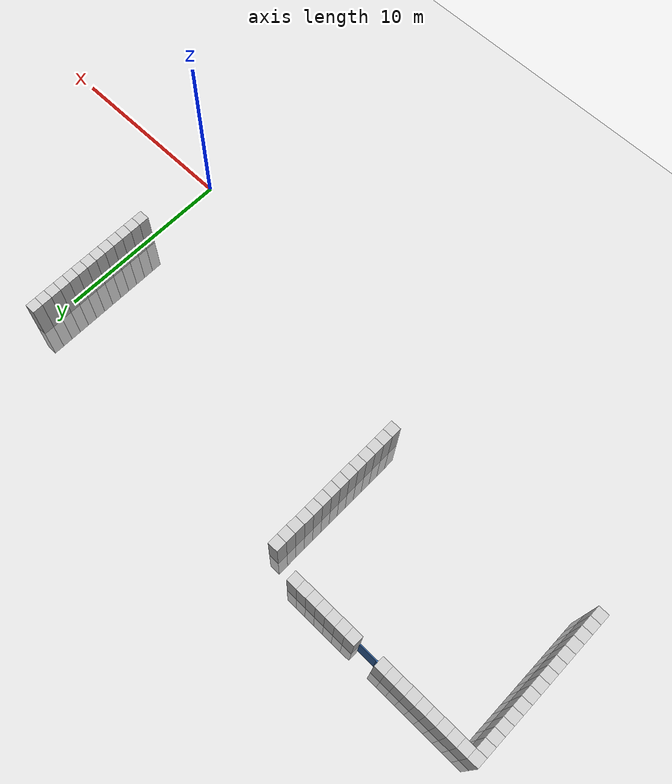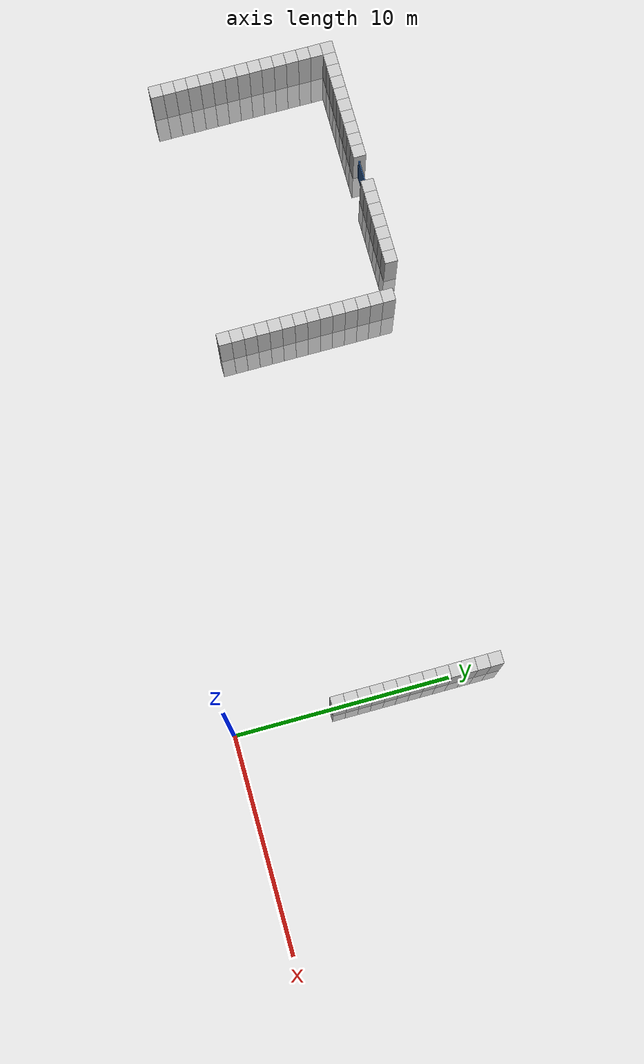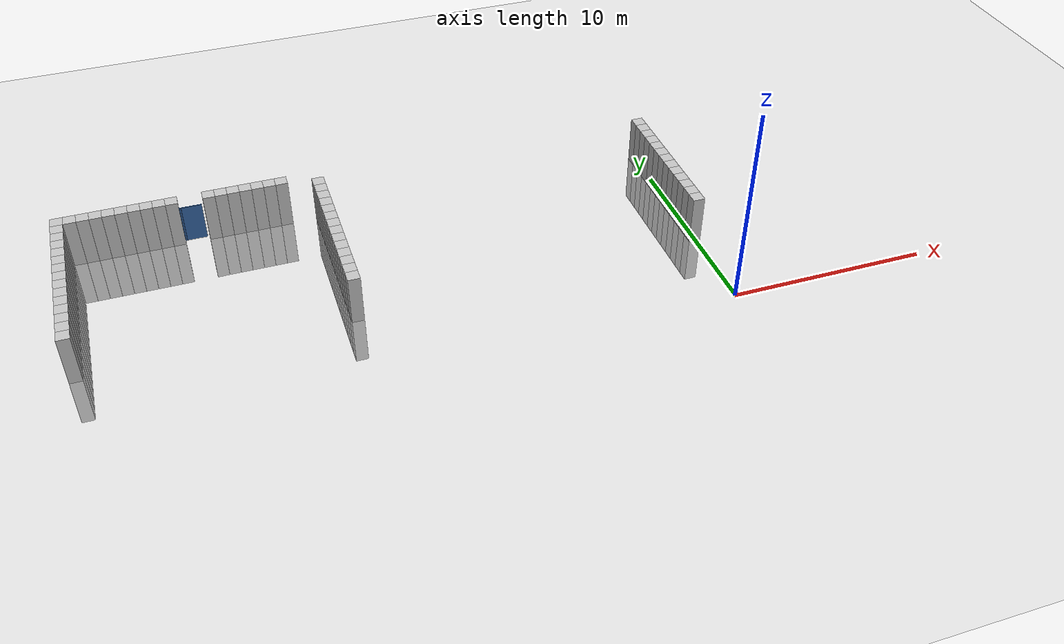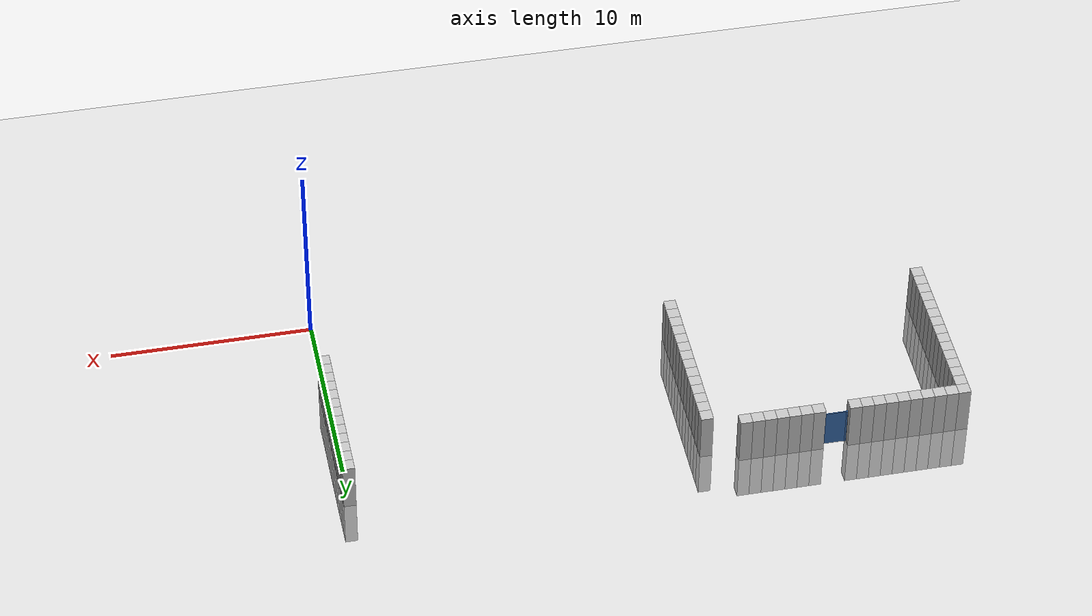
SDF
<sdf version="1.6">
 <world name="default">
  <model name="ground_plane">
   <static>1</static>
   <link name="link">
    <collision name="collision">
     <geometry><plane><normal>0 0 1</normal><size>100 100</size></plane></geometry>
     <surface><friction><ode><mu>100</mu><mu2>50</mu2></ode></friction></surface>
    </collision>
    <visual name="visual">
     <cast_shadows>0</cast_shadows>
     <geometry><plane><normal>0 0 1</normal><size>100 100</size></plane></geometry>
     <material>
      <script><uri>file://media/materials/scripts/gazebo.material</uri><name>Gazebo/Grey</name></script>
     </material>
    </visual>
   </link>
  </model>
  <model name="unit_cylinder_8">
   <static>1</static>
   <pose>0 4.8 0 0 -0 0</pose>
   <link name="link">
    <inertial>
     <mass>1</mass>
     <inertia><ixx>0.145833</ixx><ixy>0</ixy><ixz>0</ixz><iyy>0.145833</iyy><iyz>0</iyz><izz>0.125</izz></inertia>
    </inertial>
    <collision name="collision"><geometry><box><size>0.6 0.6 5</size></box></geometry></collision>
    <visual name="visual">
     <geometry><box><size>0.6 0.6 5</size></box></geometry>
     <material><ambient>0.753 0.753 0.753 1</ambient><diffuse>0.753 0.753 0.753 1</diffuse></material>
     <material>
      <script><name>Gazebo/Grey</name><uri>file://media/materials/scripts/gazebo.material</uri></script>
     </material>
    </visual>
   </link>
  </model>
  <model name="unit_cylinder_9">
   <static>1</static>
   <pose>0 5.4 0 0 -0 0</pose>
   <link name="link">
    <inertial>
     <mass>1</mass>
     <inertia><ixx>0.145833</ixx><ixy>0</ixy><ixz>0</ixz><iyy>0.145833</iyy><iyz>0</iyz><izz>0.125</izz></inertia>
    </inertial>
    <collision name="collision"><geometry><box><size>0.6 0.6 5</size></box></geometry></collision>
    <visual name="visual">
     <geometry><box><size>0.6 0.6 5</size></box></geometry>
     <material><ambient>0.753 0.753 0.753 1</ambient><diffuse>0.753 0.753 0.753 1</diffuse></material>
     <material>
      <script><name>Gazebo/Grey</name><uri>file://media/materials/scripts/gazebo.material</uri></script>
     </material>
    </visual>
   </link>
  </model>
  <model name="unit_cylinder_10">
   <static>1</static>
   <pose>0 6 0 0 -0 0</pose>
   <link name="link">
    <inertial>
     <mass>1</mass>
     <inertia><ixx>0.145833</ixx><ixy>0</ixy><ixz>0</ixz><iyy>0.145833</iyy><iyz>0</iyz><izz>0.125</izz></inertia>
    </inertial>
    <collision name="collision"><geometry><box><size>0.6 0.6 5</size></box></geometry></collision>
    <visual name="visual">
     <geometry><box><size>0.6 0.6 5</size></box></geometry>
     <material><ambient>0.753 0.753 0.753 1</ambient><diffuse>0.753 0.753 0.753 1</diffuse></material>
     <material>
      <script><name>Gazebo/Grey</name><uri>file://media/materials/scripts/gazebo.material</uri></script>
     </material>
    </visual>
   </link>
  </model>
  <model name="unit_cylinder_11">
   <static>1</static>
   <pose>0 6.6 0 0 -0 0</pose>
   <link name="link">
    <inertial>
     <mass>1</mass>
     <inertia><ixx>0.145833</ixx><ixy>0</ixy><ixz>0</ixz><iyy>0.145833</iyy><iyz>0</iyz><izz>0.125</izz></inertia>
    </inertial>
    <collision name="collision"><geometry><box><size>0.6 0.6 5</size></box></geometry></collision>
    <visual name="visual">
     <geometry><box><size>0.6 0.6 5</size></box></geometry>
     <material><ambient>0.753 0.753 0.753 1</ambient><diffuse>0.753 0.753 0.753 1</diffuse></material>
     <material>
      <script><name>Gazebo/Grey</name><uri>file://media/materials/scripts/gazebo.material</uri></script>
     </material>
    </visual>
   </link>
  </model>
  <model name="unit_cylinder_12">
   <static>1</static>
   <pose>0 7.2 0 0 -0 0</pose>
   <link name="link">
    <inertial>
     <mass>1</mass>
     <inertia><ixx>0.145833</ixx><ixy>0</ixy><ixz>0</ixz><iyy>0.145833</iyy><iyz>0</iyz><izz>0.125</izz></inertia>
    </inertial>
    <collision name="collision"><geometry><box><size>0.6 0.6 5</size></box></geometry></collision>
    <visual name="visual">
     <geometry><box><size>0.6 0.6 5</size></box></geometry>
     <material><ambient>0.753 0.753 0.753 1</ambient><diffuse>0.753 0.753 0.753 1</diffuse></material>
     <material>
      <script><name>Gazebo/Grey</name><uri>file://media/materials/scripts/gazebo.material</uri></script>
     </material>
    </visual>
   </link>
  </model>
  <model name="unit_cylinder_13">
   <static>1</static>
   <pose>0 7.8 0 0 -0 0</pose>
   <link name="link">
    <inertial>
     <mass>1</mass>
     <inertia><ixx>0.145833</ixx><ixy>0</ixy><ixz>0</ixz><iyy>0.145833</iyy><iyz>0</iyz><izz>0.125</izz></inertia>
    </inertial>
    <collision name="collision"><geometry><box><size>0.6 0.6 5</size></box></geometry></collision>
    <visual name="visual">
     <geometry><box><size>0.6 0.6 5</size></box></geometry>
     <material><ambient>0.753 0.753 0.753 1</ambient><diffuse>0.753 0.753 0.753 1</diffuse></material>
     <material>
      <script><name>Gazebo/Grey</name><uri>file://media/materials/scripts/gazebo.material</uri></script>
     </material>
    </visual>
   </link>
  </model>
  <model name="unit_cylinder_14">
   <static>1</static>
   <pose>0 8.4 0 0 -0 0</pose>
   <link name="link">
    <inertial>
     <mass>1</mass>
     <inertia><ixx>0.145833</ixx><ixy>0</ixy><ixz>0</ixz><iyy>0.145833</iyy><iyz>0</iyz><izz>0.125</izz></inertia>
    </inertial>
    <collision name="collision"><geometry><box><size>0.6 0.6 5</size></box></geometry></collision>
    <visual name="visual">
     <geometry><box><size>0.6 0.6 5</size></box></geometry>
     <material><ambient>0.753 0.753 0.753 1</ambient><diffuse>0.753 0.753 0.753 1</diffuse></material>
     <material>
      <script><name>Gazebo/Grey</name><uri>file://media/materials/scripts/gazebo.material</uri></script>
     </material>
    </visual>
   </link>
  </model>
  <model name="unit_cylinder_15">
   <static>1</static>
   <pose>0 9 0 0 -0 0</pose>
   <link name="link">
    <inertial>
     <mass>1</mass>
     <inertia><ixx>0.145833</ixx><ixy>0</ixy><ixz>0</ixz><iyy>0.145833</iyy><iyz>0</iyz><izz>0.125</izz></inertia>
    </inertial>
    <collision name="collision"><geometry><box><size>0.6 0.6 5</size></box></geometry></collision>
    <visual name="visual">
     <geometry><box><size>0.6 0.6 5</size></box></geometry>
     <material><ambient>0.753 0.753 0.753 1</ambient><diffuse>0.753 0.753 0.753 1</diffuse></material>
     <material>
      <script><name>Gazebo/Grey</name><uri>file://media/materials/scripts/gazebo.material</uri></script>
     </material>
    </visual>
   </link>
  </model>
  <model name="unit_cylinder_16">
   <static>1</static>
   <pose>0 9.6 0 0 -0 0</pose>
   <link name="link">
    <inertial>
     <mass>1</mass>
     <inertia><ixx>0.145833</ixx><ixy>0</ixy><ixz>0</ixz><iyy>0.145833</iyy><iyz>0</iyz><izz>0.125</izz></inertia>
    </inertial>
    <collision name="collision"><geometry><box><size>0.6 0.6 5</size></box></geometry></collision>
    <visual name="visual">
     <geometry><box><size>0.6 0.6 5</size></box></geometry>
     <material><ambient>0.753 0.753 0.753 1</ambient><diffuse>0.753 0.753 0.753 1</diffuse></material>
     <material>
      <script><name>Gazebo/Grey</name><uri>file://media/materials/scripts/gazebo.material</uri></script>
     </material>
    </visual>
   </link>
  </model>
  <model name="unit_cylinder_17">
   <static>1</static>
   <pose>0 10.2 0 0 -0 0</pose>
   <link name="link">
    <inertial>
     <mass>1</mass>
     <inertia><ixx>0.145833</ixx><ixy>0</ixy><ixz>0</ixz><iyy>0.145833</iyy><iyz>0</iyz><izz>0.125</izz></inertia>
    </inertial>
    <collision name="collision"><geometry><box><size>0.6 0.6 5</size></box></geometry></collision>
    <visual name="visual">
     <geometry><box><size>0.6 0.6 5</size></box></geometry>
     <material><ambient>0.753 0.753 0.753 1</ambient><diffuse>0.753 0.753 0.753 1</diffuse></material>
     <material>
      <script><name>Gazebo/Grey</name><uri>file://media/materials/scripts/gazebo.material</uri></script>
     </material>
    </visual>
   </link>
  </model>
  <model name="unit_cylinder_18">
   <static>1</static>
   <pose>0 10.8 0 0 -0 0</pose>
   <link name="link">
    <inertial>
     <mass>1</mass>
     <inertia><ixx>0.145833</ixx><ixy>0</ixy><ixz>0</ixz><iyy>0.145833</iyy><iyz>0</iyz><izz>0.125</izz></inertia>
    </inertial>
    <collision name="collision"><geometry><box><size>0.6 0.6 5</size></box></geometry></collision>
    <visual name="visual">
     <geometry><box><size>0.6 0.6 5</size></box></geometry>
     <material><ambient>0.753 0.753 0.753 1</ambient><diffuse>0.753 0.753 0.753 1</diffuse></material>
     <material>
      <script><name>Gazebo/Grey</name><uri>file://media/materials/scripts/gazebo.material</uri></script>
     </material>
    </visual>
   </link>
  </model>
  <model name="unit_cylinder_19">
   <static>1</static>
   <pose>0 11.4 0 0 -0 0</pose>
   <link name="link">
    <inertial>
     <mass>1</mass>
     <inertia><ixx>0.145833</ixx><ixy>0</ixy><ixz>0</ixz><iyy>0.145833</iyy><iyz>0</iyz><izz>0.125</izz></inertia>
    </inertial>
    <collision name="collision"><geometry><box><size>0.6 0.6 5</size></box></geometry></collision>
    <visual name="visual">
     <geometry><box><size>0.6 0.6 5</size></box></geometry>
     <material><ambient>0.753 0.753 0.753 1</ambient><diffuse>0.753 0.753 0.753 1</diffuse></material>
     <material>
      <script><name>Gazebo/Grey</name><uri>file://media/materials/scripts/gazebo.material</uri></script>
     </material>
    </visual>
   </link>
  </model>
  <model name="unit_cylinder_20">
   <static>1</static>
   <pose>0 12 0 0 -0 0</pose>
   <link name="link">
    <inertial>
     <mass>1</mass>
     <inertia><ixx>0.145833</ixx><ixy>0</ixy><ixz>0</ixz><iyy>0.145833</iyy><iyz>0</iyz><izz>0.125</izz></inertia>
    </inertial>
    <collision name="collision"><geometry><box><size>0.6 0.6 5</size></box></geometry></collision>
    <visual name="visual">
     <geometry><box><size>0.6 0.6 5</size></box></geometry>
     <material><ambient>0.753 0.753 0.753 1</ambient><diffuse>0.753 0.753 0.753 1</diffuse></material>
     <material>
      <script><name>Gazebo/Grey</name><uri>file://media/materials/scripts/gazebo.material</uri></script>
     </material>
    </visual>
   </link>
  </model>
  <model name="unit_cylinder_340">
   <static>1</static>
   <pose>-30 4.2 0 0 -0 0</pose>
   <link name="link">
    <inertial>
     <mass>1</mass>
     <inertia><ixx>0.145833</ixx><ixy>0</ixy><ixz>0</ixz><iyy>0.145833</iyy><iyz>0</iyz><izz>0.125</izz></inertia>
    </inertial>
    <collision name="collision"><geometry><box><size>0.6 0.6 5</size></box></geometry></collision>
    <visual name="visual">
     <geometry><box><size>0.6 0.6 5</size></box></geometry>
     <material><ambient>0.753 0.753 0.753 1</ambient><diffuse>0.753 0.753 0.753 1</diffuse></material>
     <material>
      <script><name>Gazebo/Grey</name><uri>file://media/materials/scripts/gazebo.material</uri></script>
     </material>
    </visual>
   </link>
  </model>
  <model name="unit_cylinder_341">
   <static>1</static>
   <pose>-30 4.8 0 0 -0 0</pose>
   <link name="link">
    <inertial>
     <mass>1</mass>
     <inertia><ixx>0.145833</ixx><ixy>0</ixy><ixz>0</ixz><iyy>0.145833</iyy><iyz>0</iyz><izz>0.125</izz></inertia>
    </inertial>
    <collision name="collision"><geometry><box><size>0.6 0.6 5</size></box></geometry></collision>
    <visual name="visual">
     <geometry><box><size>0.6 0.6 5</size></box></geometry>
     <material><ambient>0.753 0.753 0.753 1</ambient><diffuse>0.753 0.753 0.753 1</diffuse></material>
     <material>
      <script><name>Gazebo/Grey</name><uri>file://media/materials/scripts/gazebo.material</uri></script>
     </material>
    </visual>
   </link>
  </model>
  <model name="unit_cylinder_342">
   <static>1</static>
   <pose>-30 5.4 0 0 -0 0</pose>
   <link name="link">
    <inertial>
     <mass>1</mass>
     <inertia><ixx>0.145833</ixx><ixy>0</ixy><ixz>0</ixz><iyy>0.145833</iyy><iyz>0</iyz><izz>0.125</izz></inertia>
    </inertial>
    <collision name="collision"><geometry><box><size>0.6 0.6 5</size></box></geometry></collision>
    <visual name="visual">
     <geometry><box><size>0.6 0.6 5</size></box></geometry>
     <material><ambient>0.753 0.753 0.753 1</ambient><diffuse>0.753 0.753 0.753 1</diffuse></material>
     <material>
      <script><name>Gazebo/Grey</name><uri>file://media/materials/scripts/gazebo.material</uri></script>
     </material>
    </visual>
   </link>
  </model>
  <model name="unit_cylinder_343">
   <static>1</static>
   <pose>-30 6 0 0 -0 0</pose>
   <link name="link">
    <inertial>
     <mass>1</mass>
     <inertia><ixx>0.145833</ixx><ixy>0</ixy><ixz>0</ixz><iyy>0.145833</iyy><iyz>0</iyz><izz>0.125</izz></inertia>
    </inertial>
    <collision name="collision"><geometry><box><size>0.6 0.6 5</size></box></geometry></collision>
    <visual name="visual">
     <geometry><box><size>0.6 0.6 5</size></box></geometry>
     <material><ambient>0.753 0.753 0.753 1</ambient><diffuse>0.753 0.753 0.753 1</diffuse></material>
     <material>
      <script><name>Gazebo/Grey</name><uri>file://media/materials/scripts/gazebo.material</uri></script>
     </material>
    </visual>
   </link>
  </model>
  <model name="unit_cylinder_344">
   <static>1</static>
   <pose>-30 6.6 0 0 -0 0</pose>
   <link name="link">
    <inertial>
     <mass>1</mass>
     <inertia><ixx>0.145833</ixx><ixy>0</ixy><ixz>0</ixz><iyy>0.145833</iyy><iyz>0</iyz><izz>0.125</izz></inertia>
    </inertial>
    <collision name="collision"><geometry><box><size>0.6 0.6 5</size></box></geometry></collision>
    <visual name="visual">
     <geometry><box><size>0.6 0.6 5</size></box></geometry>
     <material><ambient>0.753 0.753 0.753 1</ambient><diffuse>0.753 0.753 0.753 1</diffuse></material>
     <material>
      <script><name>Gazebo/Grey</name><uri>file://media/materials/scripts/gazebo.material</uri></script>
     </material>
    </visual>
   </link>
  </model>
  <model name="unit_cylinder_345">
   <static>1</static>
   <pose>-30 7.2 0 0 -0 0</pose>
   <link name="link">
    <inertial>
     <mass>1</mass>
     <inertia><ixx>0.145833</ixx><ixy>0</ixy><ixz>0</ixz><iyy>0.145833</iyy><iyz>0</iyz><izz>0.125</izz></inertia>
    </inertial>
    <collision name="collision"><geometry><box><size>0.6 0.6 5</size></box></geometry></collision>
    <visual name="visual">
     <geometry><box><size>0.6 0.6 5</size></box></geometry>
     <material><ambient>0.753 0.753 0.753 1</ambient><diffuse>0.753 0.753 0.753 1</diffuse></material>
     <material>
      <script><name>Gazebo/Grey</name><uri>file://media/materials/scripts/gazebo.material</uri></script>
     </material>
    </visual>
   </link>
  </model>
  <model name="unit_cylinder_346">
   <static>1</static>
   <pose>-30 7.8 0 0 -0 0</pose>
   <link name="link">
    <inertial>
     <mass>1</mass>
     <inertia><ixx>0.145833</ixx><ixy>0</ixy><ixz>0</ixz><iyy>0.145833</iyy><iyz>0</iyz><izz>0.125</izz></inertia>
    </inertial>
    <collision name="collision"><geometry><box><size>0.6 0.6 5</size></box></geometry></collision>
    <visual name="visual">
     <geometry><box><size>0.6 0.6 5</size></box></geometry>
     <material><ambient>0.753 0.753 0.753 1</ambient><diffuse>0.753 0.753 0.753 1</diffuse></material>
     <material>
      <script><name>Gazebo/Grey</name><uri>file://media/materials/scripts/gazebo.material</uri></script>
     </material>
    </visual>
   </link>
  </model>
  <model name="unit_cylinder_347">
   <static>1</static>
   <pose>-30 8.4 0 0 -0 0</pose>
   <link name="link">
    <inertial>
     <mass>1</mass>
     <inertia><ixx>0.145833</ixx><ixy>0</ixy><ixz>0</ixz><iyy>0.145833</iyy><iyz>0</iyz><izz>0.125</izz></inertia>
    </inertial>
    <collision name="collision"><geometry><box><size>0.6 0.6 5</size></box></geometry></collision>
    <visual name="visual">
     <geometry><box><size>0.6 0.6 5</size></box></geometry>
     <material><ambient>0.753 0.753 0.753 1</ambient><diffuse>0.753 0.753 0.753 1</diffuse></material>
     <material>
      <script><name>Gazebo/Grey</name><uri>file://media/materials/scripts/gazebo.material</uri></script>
     </material>
    </visual>
   </link>
  </model>
  <model name="unit_cylinder_348">
   <static>1</static>
   <pose>-30 9 0 0 -0 0</pose>
   <link name="link">
    <inertial>
     <mass>1</mass>
     <inertia><ixx>0.145833</ixx><ixy>0</ixy><ixz>0</ixz><iyy>0.145833</iyy><iyz>0</iyz><izz>0.125</izz></inertia>
    </inertial>
    <collision name="collision"><geometry><box><size>0.6 0.6 5</size></box></geometry></collision>
    <visual name="visual">
     <geometry><box><size>0.6 0.6 5</size></box></geometry>
     <material><ambient>0.753 0.753 0.753 1</ambient><diffuse>0.753 0.753 0.753 1</diffuse></material>
     <material>
      <script><name>Gazebo/Grey</name><uri>file://media/materials/scripts/gazebo.material</uri></script>
     </material>
    </visual>
   </link>
  </model>
  <model name="unit_cylinder_349">
   <static>1</static>
   <pose>-30 9.6 0 0 -0 0</pose>
   <link name="link">
    <inertial>
     <mass>1</mass>
     <inertia><ixx>0.145833</ixx><ixy>0</ixy><ixz>0</ixz><iyy>0.145833</iyy><iyz>0</iyz><izz>0.125</izz></inertia>
    </inertial>
    <collision name="collision"><geometry><box><size>0.6 0.6 5</size></box></geometry></collision>
    <visual name="visual">
     <geometry><box><size>0.6 0.6 5</size></box></geometry>
     <material><ambient>0.753 0.753 0.753 1</ambient><diffuse>0.753 0.753 0.753 1</diffuse></material>
     <material>
      <script><name>Gazebo/Grey</name><uri>file://media/materials/scripts/gazebo.material</uri></script>
     </material>
    </visual>
   </link>
  </model>
  <model name="unit_cylinder_350">
   <static>1</static>
   <pose>-30 10.2 0 0 -0 0</pose>
   <link name="link">
    <inertial>
     <mass>1</mass>
     <inertia><ixx>0.145833</ixx><ixy>0</ixy><ixz>0</ixz><iyy>0.145833</iyy><iyz>0</iyz><izz>0.125</izz></inertia>
    </inertial>
    <collision name="collision"><geometry><box><size>0.6 0.6 5</size></box></geometry></collision>
    <visual name="visual">
     <geometry><box><size>0.6 0.6 5</size></box></geometry>
     <material><ambient>0.753 0.753 0.753 1</ambient><diffuse>0.753 0.753 0.753 1</diffuse></material>
     <material>
      <script><name>Gazebo/Grey</name><uri>file://media/materials/scripts/gazebo.material</uri></script>
     </material>
    </visual>
   </link>
  </model>
  <model name="unit_cylinder_351">
   <static>1</static>
   <pose>-30 10.8 0 0 -0 0</pose>
   <link name="link">
    <inertial>
     <mass>1</mass>
     <inertia><ixx>0.145833</ixx><ixy>0</ixy><ixz>0</ixz><iyy>0.145833</iyy><iyz>0</iyz><izz>0.125</izz></inertia>
    </inertial>
    <collision name="collision"><geometry><box><size>0.6 0.6 5</size></box></geometry></collision>
    <visual name="visual">
     <geometry><box><size>0.6 0.6 5</size></box></geometry>
     <material><ambient>0.753 0.753 0.753 1</ambient><diffuse>0.753 0.753 0.753 1</diffuse></material>
     <material>
      <script><name>Gazebo/Grey</name><uri>file://media/materials/scripts/gazebo.material</uri></script>
     </material>
    </visual>
   </link>
  </model>
  <model name="unit_cylinder_352">
   <static>1</static>
   <pose>-30 11.4 0 0 -0 0</pose>
   <link name="link">
    <inertial>
     <mass>1</mass>
     <inertia><ixx>0.145833</ixx><ixy>0</ixy><ixz>0</ixz><iyy>0.145833</iyy><iyz>0</iyz><izz>0.125</izz></inertia>
    </inertial>
    <collision name="collision"><geometry><box><size>0.6 0.6 5</size></box></geometry></collision>
    <visual name="visual">
     <geometry><box><size>0.6 0.6 5</size></box></geometry>
     <material><ambient>0.753 0.753 0.753 1</ambient><diffuse>0.753 0.753 0.753 1</diffuse></material>
     <material>
      <script><name>Gazebo/Grey</name><uri>file://media/materials/scripts/gazebo.material</uri></script>
     </material>
    </visual>
   </link>
  </model>
  <model name="unit_cylinder_353">
   <static>1</static>
   <pose>-30 12 0 0 -0 0</pose>
   <link name="link">
    <inertial>
     <mass>1</mass>
     <inertia><ixx>0.145833</ixx><ixy>0</ixy><ixz>0</ixz><iyy>0.145833</iyy><iyz>0</iyz><izz>0.125</izz></inertia>
    </inertial>
    <collision name="collision"><geometry><box><size>0.6 0.6 5</size></box></geometry></collision>
    <visual name="visual">
     <geometry><box><size>0.6 0.6 5</size></box></geometry>
     <material><ambient>0.753 0.753 0.753 1</ambient><diffuse>0.753 0.753 0.753 1</diffuse></material>
     <material>
      <script><name>Gazebo/Grey</name><uri>file://media/materials/scripts/gazebo.material</uri></script>
     </material>
    </visual>
   </link>
  </model>
  <model name="unit_cylinder_354">
   <static>1</static>
   <pose>-30 12.6 0 0 -0 0</pose>
   <link name="link">
    <inertial>
     <mass>1</mass>
     <inertia><ixx>0.145833</ixx><ixy>0</ixy><ixz>0</ixz><iyy>0.145833</iyy><iyz>0</iyz><izz>0.125</izz></inertia>
    </inertial>
    <collision name="collision"><geometry><box><size>0.6 0.6 5</size></box></geometry></collision>
    <visual name="visual">
     <geometry><box><size>0.6 0.6 5</size></box></geometry>
     <material><ambient>0.753 0.753 0.753 1</ambient><diffuse>0.753 0.753 0.753 1</diffuse></material>
     <material>
      <script><name>Gazebo/Grey</name><uri>file://media/materials/scripts/gazebo.material</uri></script>
     </material>
    </visual>
   </link>
  </model>
  <model name="unit_cylinder_398">
   <static>1</static>
   <pose>-29.4 12.6 0 0 -0 0</pose>
   <link name="link">
    <inertial>
     <mass>1</mass>
     <inertia><ixx>0.145833</ixx><ixy>0</ixy><ixz>0</ixz><iyy>0.145833</iyy><iyz>0</iyz><izz>0.125</izz></inertia>
    </inertial>
    <collision name="collision"><geometry><box><size>0.6 0.6 5</size></box></geometry></collision>
    <visual name="visual">
     <geometry><box><size>0.6 0.6 5</size></box></geometry>
     <material><ambient>0.753 0.753 0.753 1</ambient><diffuse>0.753 0.753 0.753 1</diffuse></material>
     <material>
      <script><name>Gazebo/Grey</name><uri>file://media/materials/scripts/gazebo.material</uri></script>
     </material>
    </visual>
   </link>
  </model>
  <model name="unit_cylinder_402">
   <static>1</static>
   <pose>-28.8 12.6 0 0 -0 0</pose>
   <link name="link">
    <inertial>
     <mass>1</mass>
     <inertia><ixx>0.145833</ixx><ixy>0</ixy><ixz>0</ixz><iyy>0.145833</iyy><iyz>0</iyz><izz>0.125</izz></inertia>
    </inertial>
    <collision name="collision"><geometry><box><size>0.6 0.6 5</size></box></geometry></collision>
    <visual name="visual">
     <geometry><box><size>0.6 0.6 5</size></box></geometry>
     <material><ambient>0.753 0.753 0.753 1</ambient><diffuse>0.753 0.753 0.753 1</diffuse></material>
     <material>
      <script><name>Gazebo/Grey</name><uri>file://media/materials/scripts/gazebo.material</uri></script>
     </material>
    </visual>
   </link>
  </model>
  <model name="unit_cylinder_406">
   <static>1</static>
   <pose>-28.2 12.6 0 0 -0 0</pose>
   <link name="link">
    <inertial>
     <mass>1</mass>
     <inertia><ixx>0.145833</ixx><ixy>0</ixy><ixz>0</ixz><iyy>0.145833</iyy><iyz>0</iyz><izz>0.125</izz></inertia>
    </inertial>
    <collision name="collision"><geometry><box><size>0.6 0.6 5</size></box></geometry></collision>
    <visual name="visual">
     <geometry><box><size>0.6 0.6 5</size></box></geometry>
     <material><ambient>0.753 0.753 0.753 1</ambient><diffuse>0.753 0.753 0.753 1</diffuse></material>
     <material>
      <script><name>Gazebo/Grey</name><uri>file://media/materials/scripts/gazebo.material</uri></script>
     </material>
    </visual>
   </link>
  </model>
  <model name="unit_cylinder_410">
   <static>1</static>
   <pose>-27.6 12.6 0 0 -0 0</pose>
   <link name="link">
    <inertial>
     <mass>1</mass>
     <inertia><ixx>0.145833</ixx><ixy>0</ixy><ixz>0</ixz><iyy>0.145833</iyy><iyz>0</iyz><izz>0.125</izz></inertia>
    </inertial>
    <collision name="collision"><geometry><box><size>0.6 0.6 5</size></box></geometry></collision>
    <visual name="visual">
     <geometry><box><size>0.6 0.6 5</size></box></geometry>
     <material><ambient>0.753 0.753 0.753 1</ambient><diffuse>0.753 0.753 0.753 1</diffuse></material>
     <material>
      <script><name>Gazebo/Grey</name><uri>file://media/materials/scripts/gazebo.material</uri></script>
     </material>
    </visual>
   </link>
  </model>
  <model name="unit_cylinder_414">
   <static>1</static>
   <pose>-27 12.6 0 0 -0 0</pose>
   <link name="link">
    <inertial>
     <mass>1</mass>
     <inertia><ixx>0.145833</ixx><ixy>0</ixy><ixz>0</ixz><iyy>0.145833</iyy><iyz>0</iyz><izz>0.125</izz></inertia>
    </inertial>
    <collision name="collision"><geometry><box><size>0.6 0.6 5</size></box></geometry></collision>
    <visual name="visual">
     <geometry><box><size>0.6 0.6 5</size></box></geometry>
     <material><ambient>0.753 0.753 0.753 1</ambient><diffuse>0.753 0.753 0.753 1</diffuse></material>
     <material>
      <script><name>Gazebo/Grey</name><uri>file://media/materials/scripts/gazebo.material</uri></script>
     </material>
    </visual>
   </link>
  </model>
  <model name="unit_cylinder_418">
   <static>1</static>
   <pose>-26.4 12.6 0 0 -0 0</pose>
   <link name="link">
    <inertial>
     <mass>1</mass>
     <inertia><ixx>0.145833</ixx><ixy>0</ixy><ixz>0</ixz><iyy>0.145833</iyy><iyz>0</iyz><izz>0.125</izz></inertia>
    </inertial>
    <collision name="collision"><geometry><box><size>0.6 0.6 5</size></box></geometry></collision>
    <visual name="visual">
     <geometry><box><size>0.6 0.6 5</size></box></geometry>
     <material><ambient>0.753 0.753 0.753 1</ambient><diffuse>0.753 0.753 0.753 1</diffuse></material>
     <material>
      <script><name>Gazebo/Grey</name><uri>file://media/materials/scripts/gazebo.material</uri></script>
     </material>
    </visual>
   </link>
  </model>
  <model name="unit_cylinder_422">
   <static>1</static>
   <pose>-25.8 12.6 0 0 -0 0</pose>
   <link name="link">
    <inertial>
     <mass>1</mass>
     <inertia><ixx>0.145833</ixx><ixy>0</ixy><ixz>0</ixz><iyy>0.145833</iyy><iyz>0</iyz><izz>0.125</izz></inertia>
    </inertial>
    <collision name="collision"><geometry><box><size>0.6 0.6 5</size></box></geometry></collision>
    <visual name="visual">
     <geometry><box><size>0.6 0.6 5</size></box></geometry>
     <material><ambient>0.753 0.753 0.753 1</ambient><diffuse>0.753 0.753 0.753 1</diffuse></material>
     <material>
      <script><name>Gazebo/Grey</name><uri>file://media/materials/scripts/gazebo.material</uri></script>
     </material>
    </visual>
   </link>
  </model>
  <model name="unit_cylinder_426">
   <static>1</static>
   <pose>-25.2 12.6 0 0 -0 0</pose>
   <link name="link">
    <inertial>
     <mass>1</mass>
     <inertia><ixx>0.145833</ixx><ixy>0</ixy><ixz>0</ixz><iyy>0.145833</iyy><iyz>0</iyz><izz>0.125</izz></inertia>
    </inertial>
    <collision name="collision"><geometry><box><size>0.6 0.6 5</size></box></geometry></collision>
    <visual name="visual">
     <geometry><box><size>0.6 0.6 5</size></box></geometry>
     <material><ambient>0.753 0.753 0.753 1</ambient><diffuse>0.753 0.753 0.753 1</diffuse></material>
     <material>
      <script><name>Gazebo/Grey</name><uri>file://media/materials/scripts/gazebo.material</uri></script>
     </material>
    </visual>
   </link>
  </model>
  <model name="unit_cylinder_430">
   <static>1</static>
   <pose>-24.6 12.6 0 0 -0 0</pose>
   <link name="link">
    <inertial>
     <mass>1</mass>
     <inertia><ixx>0.145833</ixx><ixy>0</ixy><ixz>0</ixz><iyy>0.145833</iyy><iyz>0</iyz><izz>0.125</izz></inertia>
    </inertial>
    <collision name="collision"><geometry><box><size>0.6 0.6 5</size></box></geometry></collision>
    <visual name="visual">
     <geometry><box><size>0.6 0.6 5</size></box></geometry>
     <material><ambient>0.753 0.753 0.753 1</ambient><diffuse>0.753 0.753 0.753 1</diffuse></material>
     <material>
      <script><name>Gazebo/Grey</name><uri>file://media/materials/scripts/gazebo.material</uri></script>
     </material>
    </visual>
   </link>
  </model>
  <model name="unit_cylinder_442">
   <static>1</static>
   <pose>-22.8 12.6 0 0 -0 0</pose>
   <link name="link">
    <inertial>
     <mass>1</mass>
     <inertia><ixx>0.145833</ixx><ixy>0</ixy><ixz>0</ixz><iyy>0.145833</iyy><iyz>0</iyz><izz>0.125</izz></inertia>
    </inertial>
    <collision name="collision"><geometry><box><size>0.6 0.6 5</size></box></geometry></collision>
    <visual name="visual">
     <geometry><box><size>0.6 0.6 5</size></box></geometry>
     <material><ambient>0.753 0.753 0.753 1</ambient><diffuse>0.753 0.753 0.753 1</diffuse></material>
     <material>
      <script><name>Gazebo/Grey</name><uri>file://media/materials/scripts/gazebo.material</uri></script>
     </material>
    </visual>
   </link>
  </model>
  <model name="unit_cylinder_446">
   <static>1</static>
   <pose>-22.2 12.6 0 0 -0 0</pose>
   <link name="link">
    <inertial>
     <mass>1</mass>
     <inertia><ixx>0.145833</ixx><ixy>0</ixy><ixz>0</ixz><iyy>0.145833</iyy><iyz>0</iyz><izz>0.125</izz></inertia>
    </inertial>
    <collision name="collision"><geometry><box><size>0.6 0.6 5</size></box></geometry></collision>
    <visual name="visual">
     <geometry><box><size>0.6 0.6 5</size></box></geometry>
     <material><ambient>0.753 0.753 0.753 1</ambient><diffuse>0.753 0.753 0.753 1</diffuse></material>
     <material>
      <script><name>Gazebo/Grey</name><uri>file://media/materials/scripts/gazebo.material</uri></script>
     </material>
    </visual>
   </link>
  </model>
  <model name="unit_cylinder_450">
   <static>1</static>
   <pose>-21.6 12.6 0 0 -0 0</pose>
   <link name="link">
    <inertial>
     <mass>1</mass>
     <inertia><ixx>0.145833</ixx><ixy>0</ixy><ixz>0</ixz><iyy>0.145833</iyy><iyz>0</iyz><izz>0.125</izz></inertia>
    </inertial>
    <collision name="collision"><geometry><box><size>0.6 0.6 5</size></box></geometry></collision>
    <visual name="visual">
     <geometry><box><size>0.6 0.6 5</size></box></geometry>
     <material><ambient>0.753 0.753 0.753 1</ambient><diffuse>0.753 0.753 0.753 1</diffuse></material>
     <material>
      <script><name>Gazebo/Grey</name><uri>file://media/materials/scripts/gazebo.material</uri></script>
     </material>
    </visual>
   </link>
  </model>
  <model name="unit_cylinder_454">
   <static>1</static>
   <pose>-21 12.6 0 0 -0 0</pose>
   <link name="link">
    <inertial>
     <mass>1</mass>
     <inertia><ixx>0.145833</ixx><ixy>0</ixy><ixz>0</ixz><iyy>0.145833</iyy><iyz>0</iyz><izz>0.125</izz></inertia>
    </inertial>
    <collision name="collision"><geometry><box><size>0.6 0.6 5</size></box></geometry></collision>
    <visual name="visual">
     <geometry><box><size>0.6 0.6 5</size></box></geometry>
     <material><ambient>0.753 0.753 0.753 1</ambient><diffuse>0.753 0.753 0.753 1</diffuse></material>
     <material>
      <script><name>Gazebo/Grey</name><uri>file://media/materials/scripts/gazebo.material</uri></script>
     </material>
    </visual>
   </link>
  </model>
  <model name="unit_cylinder_458">
   <static>1</static>
   <pose>-20.4 12.6 0 0 -0 0</pose>
   <link name="link">
    <inertial>
     <mass>1</mass>
     <inertia><ixx>0.145833</ixx><ixy>0</ixy><ixz>0</ixz><iyy>0.145833</iyy><iyz>0</iyz><izz>0.125</izz></inertia>
    </inertial>
    <collision name="collision"><geometry><box><size>0.6 0.6 5</size></box></geometry></collision>
    <visual name="visual">
     <geometry><box><size>0.6 0.6 5</size></box></geometry>
     <material><ambient>0.753 0.753 0.753 1</ambient><diffuse>0.753 0.753 0.753 1</diffuse></material>
     <material>
      <script><name>Gazebo/Grey</name><uri>file://media/materials/scripts/gazebo.material</uri></script>
     </material>
    </visual>
   </link>
  </model>
  <model name="unit_cylinder_462">
   <static>1</static>
   <pose>-19.8 12.6 0 0 -0 0</pose>
   <link name="link">
    <inertial>
     <mass>1</mass>
     <inertia><ixx>0.145833</ixx><ixy>0</ixy><ixz>0</ixz><iyy>0.145833</iyy><iyz>0</iyz><izz>0.125</izz></inertia>
    </inertial>
    <collision name="collision"><geometry><box><size>0.6 0.6 5</size></box></geometry></collision>
    <visual name="visual">
     <geometry><box><size>0.6 0.6 5</size></box></geometry>
     <material><ambient>0.753 0.753 0.753 1</ambient><diffuse>0.753 0.753 0.753 1</diffuse></material>
     <material>
      <script><name>Gazebo/Grey</name><uri>file://media/materials/scripts/gazebo.material</uri></script>
     </material>
    </visual>
   </link>
  </model>
  <model name="unit_cylinder_466">
   <static>1</static>
   <pose>-19.2 12.6 0 0 -0 0</pose>
   <link name="link">
    <inertial>
     <mass>1</mass>
     <inertia><ixx>0.145833</ixx><ixy>0</ixy><ixz>0</ixz><iyy>0.145833</iyy><iyz>0</iyz><izz>0.125</izz></inertia>
    </inertial>
    <collision name="collision"><geometry><box><size>0.6 0.6 5</size></box></geometry></collision>
    <visual name="visual">
     <geometry><box><size>0.6 0.6 5</size></box></geometry>
     <material><ambient>0.753 0.753 0.753 1</ambient><diffuse>0.753 0.753 0.753 1</diffuse></material>
     <material>
      <script><name>Gazebo/Grey</name><uri>file://media/materials/scripts/gazebo.material</uri></script>
     </material>
    </visual>
   </link>
  </model>
  <model name="unit_cylinder_484">
   <static>1</static>
   <pose>-17.4 4.2 0 0 -0 0</pose>
   <link name="link">
    <inertial>
     <mass>1</mass>
     <inertia><ixx>0.145833</ixx><ixy>0</ixy><ixz>0</ixz><iyy>0.145833</iyy><iyz>0</iyz><izz>0.125</izz></inertia>
    </inertial>
    <collision name="collision"><geometry><box><size>0.6 0.6 5</size></box></geometry></collision>
    <visual name="visual">
     <geometry><box><size>0.6 0.6 5</size></box></geometry>
     <material><ambient>0.753 0.753 0.753 1</ambient><diffuse>0.753 0.753 0.753 1</diffuse></material>
     <material>
      <script><name>Gazebo/Grey</name><uri>file://media/materials/scripts/gazebo.material</uri></script>
     </material>
    </visual>
   </link>
  </model>
  <model name="unit_cylinder_485">
   <static>1</static>
   <pose>-17.4 4.8 0 0 -0 0</pose>
   <link name="link">
    <inertial>
     <mass>1</mass>
     <inertia><ixx>0.145833</ixx><ixy>0</ixy><ixz>0</ixz><iyy>0.145833</iyy><iyz>0</iyz><izz>0.125</izz></inertia>
    </inertial>
    <collision name="collision"><geometry><box><size>0.6 0.6 5</size></box></geometry></collision>
    <visual name="visual">
     <geometry><box><size>0.6 0.6 5</size></box></geometry>
     <material><ambient>0.753 0.753 0.753 1</ambient><diffuse>0.753 0.753 0.753 1</diffuse></material>
     <material>
      <script><name>Gazebo/Grey</name><uri>file://media/materials/scripts/gazebo.material</uri></script>
     </material>
    </visual>
   </link>
  </model>
  <model name="unit_cylinder_486">
   <static>1</static>
   <pose>-17.4 5.4 0 0 -0 0</pose>
   <link name="link">
    <inertial>
     <mass>1</mass>
     <inertia><ixx>0.145833</ixx><ixy>0</ixy><ixz>0</ixz><iyy>0.145833</iyy><iyz>0</iyz><izz>0.125</izz></inertia>
    </inertial>
    <collision name="collision"><geometry><box><size>0.6 0.6 5</size></box></geometry></collision>
    <visual name="visual">
     <geometry><box><size>0.6 0.6 5</size></box></geometry>
     <material><ambient>0.753 0.753 0.753 1</ambient><diffuse>0.753 0.753 0.753 1</diffuse></material>
     <material>
      <script><name>Gazebo/Grey</name><uri>file://media/materials/scripts/gazebo.material</uri></script>
     </material>
    </visual>
   </link>
  </model>
  <model name="unit_cylinder_487">
   <static>1</static>
   <pose>-17.4 6 0 0 -0 0</pose>
   <link name="link">
    <inertial>
     <mass>1</mass>
     <inertia><ixx>0.145833</ixx><ixy>0</ixy><ixz>0</ixz><iyy>0.145833</iyy><iyz>0</iyz><izz>0.125</izz></inertia>
    </inertial>
    <collision name="collision"><geometry><box><size>0.6 0.6 5</size></box></geometry></collision>
    <visual name="visual">
     <geometry><box><size>0.6 0.6 5</size></box></geometry>
     <material><ambient>0.753 0.753 0.753 1</ambient><diffuse>0.753 0.753 0.753 1</diffuse></material>
     <material>
      <script><name>Gazebo/Grey</name><uri>file://media/materials/scripts/gazebo.material</uri></script>
     </material>
    </visual>
   </link>
  </model>
  <model name="unit_cylinder_488">
   <static>1</static>
   <pose>-17.4 6.6 0 0 -0 0</pose>
   <link name="link">
    <inertial>
     <mass>1</mass>
     <inertia><ixx>0.145833</ixx><ixy>0</ixy><ixz>0</ixz><iyy>0.145833</iyy><iyz>0</iyz><izz>0.125</izz></inertia>
    </inertial>
    <collision name="collision"><geometry><box><size>0.6 0.6 5</size></box></geometry></collision>
    <visual name="visual">
     <geometry><box><size>0.6 0.6 5</size></box></geometry>
     <material><ambient>0.753 0.753 0.753 1</ambient><diffuse>0.753 0.753 0.753 1</diffuse></material>
     <material>
      <script><name>Gazebo/Grey</name><uri>file://media/materials/scripts/gazebo.material</uri></script>
     </material>
    </visual>
   </link>
  </model>
  <model name="unit_cylinder_489">
   <static>1</static>
   <pose>-17.4 7.2 0 0 -0 0</pose>
   <link name="link">
    <inertial>
     <mass>1</mass>
     <inertia><ixx>0.145833</ixx><ixy>0</ixy><ixz>0</ixz><iyy>0.145833</iyy><iyz>0</iyz><izz>0.125</izz></inertia>
    </inertial>
    <collision name="collision"><geometry><box><size>0.6 0.6 5</size></box></geometry></collision>
    <visual name="visual">
     <geometry><box><size>0.6 0.6 5</size></box></geometry>
     <material><ambient>0.753 0.753 0.753 1</ambient><diffuse>0.753 0.753 0.753 1</diffuse></material>
     <material>
      <script><name>Gazebo/Grey</name><uri>file://media/materials/scripts/gazebo.material</uri></script>
     </material>
    </visual>
   </link>
  </model>
  <model name="unit_cylinder_490">
   <static>1</static>
   <pose>-17.4 7.8 0 0 -0 0</pose>
   <link name="link">
    <inertial>
     <mass>1</mass>
     <inertia><ixx>0.145833</ixx><ixy>0</ixy><ixz>0</ixz><iyy>0.145833</iyy><iyz>0</iyz><izz>0.125</izz></inertia>
    </inertial>
    <collision name="collision"><geometry><box><size>0.6 0.6 5</size></box></geometry></collision>
    <visual name="visual">
     <geometry><box><size>0.6 0.6 5</size></box></geometry>
     <material><ambient>0.753 0.753 0.753 1</ambient><diffuse>0.753 0.753 0.753 1</diffuse></material>
     <material>
      <script><name>Gazebo/Grey</name><uri>file://media/materials/scripts/gazebo.material</uri></script>
     </material>
    </visual>
   </link>
  </model>
  <model name="unit_cylinder_491">
   <static>1</static>
   <pose>-17.4 8.4 0 0 -0 0</pose>
   <link name="link">
    <inertial>
     <mass>1</mass>
     <inertia><ixx>0.145833</ixx><ixy>0</ixy><ixz>0</ixz><iyy>0.145833</iyy><iyz>0</iyz><izz>0.125</izz></inertia>
    </inertial>
    <collision name="collision"><geometry><box><size>0.6 0.6 5</size></box></geometry></collision>
    <visual name="visual">
     <geometry><box><size>0.6 0.6 5</size></box></geometry>
     <material><ambient>0.753 0.753 0.753 1</ambient><diffuse>0.753 0.753 0.753 1</diffuse></material>
     <material>
      <script><name>Gazebo/Grey</name><uri>file://media/materials/scripts/gazebo.material</uri></script>
     </material>
    </visual>
   </link>
  </model>
  <model name="unit_cylinder_492">
   <static>1</static>
   <pose>-17.4 9 0 0 -0 0</pose>
   <link name="link">
    <inertial>
     <mass>1</mass>
     <inertia><ixx>0.145833</ixx><ixy>0</ixy><ixz>0</ixz><iyy>0.145833</iyy><iyz>0</iyz><izz>0.125</izz></inertia>
    </inertial>
    <collision name="collision"><geometry><box><size>0.6 0.6 5</size></box></geometry></collision>
    <visual name="visual">
     <geometry><box><size>0.6 0.6 5</size></box></geometry>
     <material><ambient>0.753 0.753 0.753 1</ambient><diffuse>0.753 0.753 0.753 1</diffuse></material>
     <material>
      <script><name>Gazebo/Grey</name><uri>file://media/materials/scripts/gazebo.material</uri></script>
     </material>
    </visual>
   </link>
  </model>
  <model name="unit_cylinder_493">
   <static>1</static>
   <pose>-17.4 9.6 0 0 -0 0</pose>
   <link name="link">
    <inertial>
     <mass>1</mass>
     <inertia><ixx>0.145833</ixx><ixy>0</ixy><ixz>0</ixz><iyy>0.145833</iyy><iyz>0</iyz><izz>0.125</izz></inertia>
    </inertial>
    <collision name="collision"><geometry><box><size>0.6 0.6 5</size></box></geometry></collision>
    <visual name="visual">
     <geometry><box><size>0.6 0.6 5</size></box></geometry>
     <material><ambient>0.753 0.753 0.753 1</ambient><diffuse>0.753 0.753 0.753 1</diffuse></material>
     <material>
      <script><name>Gazebo/Grey</name><uri>file://media/materials/scripts/gazebo.material</uri></script>
     </material>
    </visual>
   </link>
  </model>
  <model name="unit_cylinder_494">
   <static>1</static>
   <pose>-17.4 10.2 0 0 -0 0</pose>
   <link name="link">
    <inertial>
     <mass>1</mass>
     <inertia><ixx>0.145833</ixx><ixy>0</ixy><ixz>0</ixz><iyy>0.145833</iyy><iyz>0</iyz><izz>0.125</izz></inertia>
    </inertial>
    <collision name="collision"><geometry><box><size>0.6 0.6 5</size></box></geometry></collision>
    <visual name="visual">
     <geometry><box><size>0.6 0.6 5</size></box></geometry>
     <material><ambient>0.753 0.753 0.753 1</ambient><diffuse>0.753 0.753 0.753 1</diffuse></material>
     <material>
      <script><name>Gazebo/Grey</name><uri>file://media/materials/scripts/gazebo.material</uri></script>
     </material>
    </visual>
   </link>
  </model>
  <model name="unit_cylinder_495">
   <static>1</static>
   <pose>-17.4 10.8 0 0 -0 0</pose>
   <link name="link">
    <inertial>
     <mass>1</mass>
     <inertia><ixx>0.145833</ixx><ixy>0</ixy><ixz>0</ixz><iyy>0.145833</iyy><iyz>0</iyz><izz>0.125</izz></inertia>
    </inertial>
    <collision name="collision"><geometry><box><size>0.6 0.6 5</size></box></geometry></collision>
    <visual name="visual">
     <geometry><box><size>0.6 0.6 5</size></box></geometry>
     <material><ambient>0.753 0.753 0.753 1</ambient><diffuse>0.753 0.753 0.753 1</diffuse></material>
     <material>
      <script><name>Gazebo/Grey</name><uri>file://media/materials/scripts/gazebo.material</uri></script>
     </material>
    </visual>
   </link>
  </model>
  <model name="unit_cylinder_496">
   <static>1</static>
   <pose>-17.4 11.4 0 0 -0 0</pose>
   <link name="link">
    <inertial>
     <mass>1</mass>
     <inertia><ixx>0.145833</ixx><ixy>0</ixy><ixz>0</ixz><iyy>0.145833</iyy><iyz>0</iyz><izz>0.125</izz></inertia>
    </inertial>
    <collision name="collision"><geometry><box><size>0.6 0.6 5</size></box></geometry></collision>
    <visual name="visual">
     <geometry><box><size>0.6 0.6 5</size></box></geometry>
     <material><ambient>0.753 0.753 0.753 1</ambient><diffuse>0.753 0.753 0.753 1</diffuse></material>
     <material>
      <script><name>Gazebo/Grey</name><uri>file://media/materials/scripts/gazebo.material</uri></script>
     </material>
    </visual>
   </link>
  </model>
  <model name="unit_cylinder_497">
   <static>1</static>
   <pose>-17.4 12 0 0 -0 0</pose>
   <link name="link">
    <inertial>
     <mass>1</mass>
     <inertia><ixx>0.145833</ixx><ixy>0</ixy><ixz>0</ixz><iyy>0.145833</iyy><iyz>0</iyz><izz>0.125</izz></inertia>
    </inertial>
    <collision name="collision"><geometry><box><size>0.6 0.6 5</size></box></geometry></collision>
    <visual name="visual">
     <geometry><box><size>0.6 0.6 5</size></box></geometry>
     <material><ambient>0.753 0.753 0.753 1</ambient><diffuse>0.753 0.753 0.753 1</diffuse></material>
     <material>
      <script><name>Gazebo/Grey</name><uri>file://media/materials/scripts/gazebo.material</uri></script>
     </material>
    </visual>
   </link>
  </model>
  <model name="hinge_door_0">
   <link name="link_0">
    <inertial>
     <mass>0.11</mass>
     <inertia>
      <ixx>0.0366896</ixx>
      <ixy>0</ixy>
      <ixz>0</ixz>
      <iyy>0.0477583</iyy>
      <iyz>0</iyz>
      <izz>0.0111146</izz>
     </inertia>
    </inertial>
    <pose>0.25 0 1 0 -0 0</pose>
    <visual name="visual">
     <geometry><box><size>1.1 0.05 2</size></box></geometry>
     <material>
      <lighting>1</lighting>
      <script><uri>file://media/materials/scripts/gazebo.material</uri><name>Gazebo/Grey</name></script>
      <shader type="pixel"><normal_map>__default__</normal_map></shader>
      <ambient>0.204 0.396 0.643 1</ambient>
      <diffuse>0.7 0.7 0.7 1</diffuse>
      <specular>0.01 0.01 0.01 1</specular>
      <emissive>0 0 0 1</emissive>
     </material>
    </visual>
    <collision name="collision">
     <geometry><box><size>1.1 0.05 2</size></box></geometry>
     <surface>
      <friction>
       <ode><mu>1</mu><mu2>1</mu2><fdir1>0 0 0</fdir1><slip1>0</slip1><slip2>0</slip2></ode>
       <torsional>
        <coefficient>1</coefficient>
        <patch_radius>0</patch_radius>
        <surface_radius>0</surface_radius>
        <use_patch_radius>1</use_patch_radius>
        <ode><slip>0</slip></ode>
       </torsional>
      </friction>
      <bounce><restitution_coefficient>0</restitution_coefficient><threshold>1e+06</threshold></bounce>
      <contact>
       <collide_without_contact>0</collide_without_contact>
       <collide_without_contact_bitmask>1</collide_without_contact_bitmask>
       <collide_bitmask>1</collide_bitmask>
       <ode>
        <soft_cfm>0</soft_cfm>
        <soft_erp>0.2</soft_erp>
        <kp>1e+13</kp>
        <kd>1</kd>
        <max_vel>0.01</max_vel>
        <min_depth>0</min_depth>
       </ode>
       <bullet>
        <split_impulse>1</split_impulse>
        <split_impulse_penetration_threshold>-0.01</split_impulse_penetration_threshold>
        <soft_cfm>0</soft_cfm>
        <soft_erp>0.2</soft_erp>
        <kp>1e+13</kp>
        <kd>1</kd>
       </bullet>
      </contact>
     </surface>
    </collision>
   </link>
   <link name="link_1">
    <inertial>
     <mass>10.9956</mass>
     <inertia>
      <ixx>3.67206</ixx>
      <ixy>0</ixy>
      <ixz>0</ixz>
      <iyy>3.67206</iyy>
      <iyz>0</iyz>
      <izz>0.0137445</izz>
     </inertia>
    </inertial>
    <pose>-0.25 0 1 0 -0 0</pose>
    <visual name="visual">
     <geometry><cylinder><radius>0.05</radius><length>2</length></cylinder></geometry>
     <material>
      <lighting>1</lighting>
      <script><uri>file://media/materials/scripts/gazebo.material</uri><name>Gazebo/Grey</name></script>
      <shader type="pixel"><normal_map>__default__</normal_map></shader>
      <ambient>0.204 0.396 0.643 1</ambient>
      <diffuse>0.7 0.7 0.7 1</diffuse>
      <specular>0.01 0.01 0.01 1</specular>
      <emissive>0 0 0 1</emissive>
     </material>
    </visual>
    <collision name="collision">
     <geometry><cylinder><radius>0.05</radius><length>2</length></cylinder></geometry>
     <surface>
      <friction>
       <ode><mu>1</mu><mu2>1</mu2><fdir1>0 0 0</fdir1><slip1>0</slip1><slip2>0</slip2></ode>
       <torsional>
        <coefficient>1</coefficient>
        <patch_radius>0</patch_radius>
        <surface_radius>0</surface_radius>
        <use_patch_radius>1</use_patch_radius>
        <ode><slip>0</slip></ode>
       </torsional>
      </friction>
      <bounce><restitution_coefficient>0</restitution_coefficient><threshold>1e+06</threshold></bounce>
      <contact>
       <collide_without_contact>0</collide_without_contact>
       <collide_without_contact_bitmask>1</collide_without_contact_bitmask>
       <collide_bitmask>1</collide_bitmask>
       <ode>
        <soft_cfm>0</soft_cfm>
        <soft_erp>0.2</soft_erp>
        <kp>1e+13</kp>
        <kd>1</kd>
        <max_vel>0.01</max_vel>
        <min_depth>0</min_depth>
       </ode>
       <bullet>
        <split_impulse>1</split_impulse>
        <split_impulse_penetration_threshold>-0.01</split_impulse_penetration_threshold>
        <soft_cfm>0</soft_cfm>
        <soft_erp>0.2</soft_erp>
        <kp>1e+13</kp>
        <kd>1</kd>
       </bullet>
      </contact>
     </surface>
    </collision>
   </link>
   <joint name="hinge" type="revolute">
    <parent>link_1</parent>
    <child>link_0</child>
    <pose>-0.5 0 0 0 -0 0</pose>
    <axis>
     <xyz>0 0 1</xyz>
     <use_parent_model_frame>0</use_parent_model_frame>
     <limit>
      <lower>-1.79769e+308</lower>
      <upper>1.79769e+308</upper>
      <effort>-1</effort>
      <velocity>-1</velocity>
     </limit>
     <dynamics>
      <spring_reference>0</spring_reference>
      <spring_stiffness>0</spring_stiffness>
      <damping>0</damping>
      <friction>0</friction>
     </dynamics>
    </axis>
    <physics>
     <ode><limit><cfm>0</cfm><erp>0.2</erp></limit><suspension><cfm>0</cfm><erp>0.2</erp></suspension></ode>
    </physics>
   </joint>
   <joint name="floor_link" type="fixed">
    <child>link_1</child>
    <parent>world</parent>
    <axis>
     <xyz>0 0 1</xyz>
     <dynamics><spring_reference>0</spring_reference><spring_stiffness>0</spring_stiffness></dynamics>
     <use_parent_model_frame>0</use_parent_model_frame>
     <limit><lower>-1e+16</lower><upper>1e+16</upper></limit>
    </axis>
   </joint>
   <pose>-23.9949 12.5707 0 0 0 -0.000508</pose>
  </model>
 </world>
</sdf>
